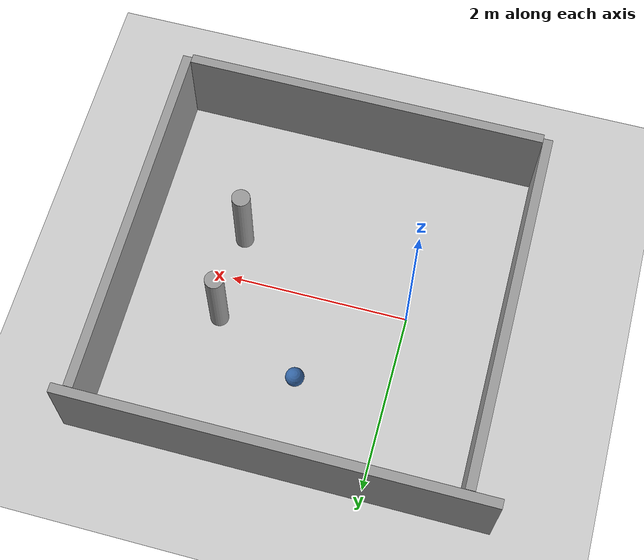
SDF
<sdf version="1.7">
 <world name="default">
  <light name="sun" type="directional">
   <pose>0 0 10 0 -0 0</pose>
   <diffuse>0.8 0.8 0.8 1</diffuse>
   <specular>0.2 0.2 0.2 1</specular>
   <attenuation>
    <range>1000</range>
    <constant>0.9</constant>
    <linear>0.01</linear>
    <quadratic>0.001</quadratic>
   </attenuation>
   <direction>-0.5 0.1 -0.9</direction>
   <spot><inner_angle>0</inner_angle><outer_angle>0</outer_angle><falloff>0</falloff></spot>
  </light>
  <model name="ground_plane">
   <static>1</static>
   <link name="link">
    <collision name="collision">
     <geometry><plane><normal>0 0 1</normal><size>100 100</size></plane></geometry>
     <surface>
      <contact><collide_bitmask>65535</collide_bitmask></contact>
      <friction><ode><mu>100</mu><mu2>50</mu2></ode></friction>
     </surface>
    </collision>
    <visual name="visual">
     <cast_shadows>0</cast_shadows>
     <geometry><plane><normal>0 0 1</normal><size>100 100</size></plane></geometry>
     <material>
      <script><uri>file://media/materials/scripts/gazebo.material</uri><name>Gazebo/Grey</name></script>
     </material>
    </visual>
   </link>
  </model>
  <physics type="ode">
   <real_time_update_rate>1000</real_time_update_rate>
   <max_step_size>0.001</max_step_size>
   <real_time_factor>1</real_time_factor>
   <ode>
    <solver>
     <type>quick</type>
     <iters>150</iters>
     <precon_iters>0</precon_iters>
     <sor>1.4</sor>
     <use_dynamic_moi_rescaling>1</use_dynamic_moi_rescaling>
    </solver>
    <constraints>
     <cfm>1e-05</cfm>
     <erp>0.2</erp>
     <contact_max_correcting_vel>2000</contact_max_correcting_vel>
     <contact_surface_layer>0.01</contact_surface_layer>
    </constraints>
   </ode>
  </physics>
  <scene><ambient>0.4 0.4 0.4 1</ambient><background>0.7 0.7 0.7 1</background><shadows>1</shadows></scene>
  <gravity>0 0 -9.8</gravity>
  <magnetic_field>6e-06 2.3e-05 -4.2e-05</magnetic_field>
  <atmosphere type="adiabatic"/>
  <spherical_coordinates>
   <surface_model>EARTH_WGS84</surface_model>
   <latitude_deg>0</latitude_deg>
   <longitude_deg>0</longitude_deg>
   <elevation>0</elevation>
   <heading_deg>0</heading_deg>
  </spherical_coordinates>
  <model name="wall_clone">
   <link name="link_0">
    <inertial>
     <mass>0.628692</mass>
     <inertia><ixx>0.0529627</ixx><ixy>0</ixy><ixz>0</ixz><iyy>1.96512</iyy><iyz>0</iyz><izz>1.9133</izz></inertia>
    </inertial>
    <visual name="visual">
     <geometry><box><size>4.02831 0.104457 1</size></box></geometry>
     <material>
      <lighting>1</lighting>
      <script><uri>file://media/materials/scripts/gazebo.material</uri><name>Gazebo/Grey</name></script>
      <shader type="pixel"/>
     </material>
    </visual>
    <collision name="collision">
     <geometry><box><size>4.02831 0.104457 1</size></box></geometry>
     <surface>
      <friction>
       <ode><mu>1</mu><mu2>1</mu2><fdir1>0 0 0</fdir1><slip1>0</slip1><slip2>0</slip2></ode>
       <torsional>
        <coefficient>1</coefficient>
        <patch_radius>0</patch_radius>
        <surface_radius>0</surface_radius>
        <use_patch_radius>1</use_patch_radius>
        <ode><slip>0</slip></ode>
       </torsional>
      </friction>
      <bounce><restitution_coefficient>0</restitution_coefficient><threshold>1e+06</threshold></bounce>
      <contact>
       <collide_without_contact>0</collide_without_contact>
       <collide_without_contact_bitmask>1</collide_without_contact_bitmask>
       <collide_bitmask>1</collide_bitmask>
       <ode>
        <soft_cfm>0</soft_cfm>
        <soft_erp>0.2</soft_erp>
        <kp>1e+13</kp>
        <kd>1</kd>
        <max_vel>0.01</max_vel>
        <min_depth>0</min_depth>
       </ode>
       <bullet>
        <split_impulse>1</split_impulse>
        <split_impulse_penetration_threshold>-0.01</split_impulse_penetration_threshold>
        <soft_cfm>0</soft_cfm>
        <soft_erp>0.2</soft_erp>
        <kp>1e+13</kp>
        <kd>1</kd>
       </bullet>
      </contact>
     </surface>
    </collision>
   </link>
   <static>0</static>
   <pose>1.01873 -2.06638 0.499998 0 -1e-06 -0.003066</pose>
  </model>
  <model name="wall_clone_0">
   <link name="link_0">
    <inertial>
     <mass>0.628692</mass>
     <inertia><ixx>0.0529627</ixx><ixy>0</ixy><ixz>0</ixz><iyy>1.96512</iyy><iyz>0</iyz><izz>1.9133</izz></inertia>
    </inertial>
    <visual name="visual">
     <geometry><box><size>4.09354 0.104457 1</size></box></geometry>
     <material>
      <lighting>1</lighting>
      <script><uri>file://media/materials/scripts/gazebo.material</uri><name>Gazebo/Grey</name></script>
      <shader type="pixel"/>
     </material>
    </visual>
    <collision name="collision">
     <geometry><box><size>4.09354 0.104457 1</size></box></geometry>
     <surface>
      <friction>
       <ode><mu>1</mu><mu2>1</mu2><fdir1>0 0 0</fdir1><slip1>0</slip1><slip2>0</slip2></ode>
       <torsional>
        <coefficient>1</coefficient>
        <patch_radius>0</patch_radius>
        <surface_radius>0</surface_radius>
        <use_patch_radius>1</use_patch_radius>
        <ode><slip>0</slip></ode>
       </torsional>
      </friction>
      <bounce><restitution_coefficient>0</restitution_coefficient><threshold>1e+06</threshold></bounce>
      <contact>
       <collide_without_contact>0</collide_without_contact>
       <collide_without_contact_bitmask>1</collide_without_contact_bitmask>
       <collide_bitmask>1</collide_bitmask>
       <ode>
        <soft_cfm>0</soft_cfm>
        <soft_erp>0.2</soft_erp>
        <kp>1e+13</kp>
        <kd>1</kd>
        <max_vel>0.01</max_vel>
        <min_depth>0</min_depth>
       </ode>
       <bullet>
        <split_impulse>1</split_impulse>
        <split_impulse_penetration_threshold>-0.01</split_impulse_penetration_threshold>
        <soft_cfm>0</soft_cfm>
        <soft_erp>0.2</soft_erp>
        <kp>1e+13</kp>
        <kd>1</kd>
       </bullet>
      </contact>
     </surface>
    </collision>
   </link>
   <static>0</static>
   <pose>3.08087 -0.036967 0.499999 0 1e-06 1.57307</pose>
  </model>
  <model name="wall_clone_0_clone">
   <link name="link_0">
    <inertial>
     <mass>0.628692</mass>
     <inertia><ixx>0.0529627</ixx><ixy>0</ixy><ixz>0</ixz><iyy>1.96512</iyy><iyz>0</iyz><izz>1.9133</izz></inertia>
    </inertial>
    <visual name="visual">
     <geometry><box><size>4.07307 0.104457 1</size></box></geometry>
     <material>
      <lighting>1</lighting>
      <script><uri>file://media/materials/scripts/gazebo.material</uri><name>Gazebo/Grey</name></script>
      <shader type="pixel"/>
     </material>
    </visual>
    <collision name="collision">
     <geometry><box><size>4.07307 0.104457 1</size></box></geometry>
     <surface>
      <friction>
       <ode><mu>1</mu><mu2>1</mu2><fdir1>0 0 0</fdir1><slip1>0</slip1><slip2>0</slip2></ode>
       <torsional>
        <coefficient>1</coefficient>
        <patch_radius>0</patch_radius>
        <surface_radius>0</surface_radius>
        <use_patch_radius>1</use_patch_radius>
        <ode><slip>0</slip></ode>
       </torsional>
      </friction>
      <bounce><restitution_coefficient>0</restitution_coefficient><threshold>1e+06</threshold></bounce>
      <contact>
       <collide_without_contact>0</collide_without_contact>
       <collide_without_contact_bitmask>1</collide_without_contact_bitmask>
       <collide_bitmask>1</collide_bitmask>
       <ode>
        <soft_cfm>0</soft_cfm>
        <soft_erp>0.2</soft_erp>
        <kp>1e+13</kp>
        <kd>1</kd>
        <max_vel>0.01</max_vel>
        <min_depth>0</min_depth>
       </ode>
       <bullet>
        <split_impulse>1</split_impulse>
        <split_impulse_penetration_threshold>-0.01</split_impulse_penetration_threshold>
        <soft_cfm>0</soft_cfm>
        <soft_erp>0.2</soft_erp>
        <kp>1e+13</kp>
        <kd>1</kd>
       </bullet>
      </contact>
     </surface>
    </collision>
   </link>
   <static>0</static>
   <pose>-1.04874 -0.027158 0.499999 0 -1e-06 1.57127</pose>
  </model>
  <model name="Post1">
   <link name="link_4">
    <inertial>
     <mass>1000.01</mass>
     <inertia><ixx>85.9409</ixx><ixy>0</ixy><ixz>0</ixz><iyy>85.9409</iyy><iyz>0</iyz><izz>5.21328</izz></inertia>
    </inertial>
    <visual name="visual">
     <geometry><cylinder><radius>0.10211</radius><length>1</length></cylinder></geometry>
     <material>
      <lighting>1</lighting>
      <script><uri>file://media/materials/scripts/gazebo.material</uri><name>Gazebo/Grey</name></script>
      <shader type="pixel"><normal_map>__default__</normal_map></shader>
      <ambient>1 1 1 1</ambient>
      <diffuse>0.933 0.933 0.925 1</diffuse>
      <specular>0.533 0.541 0.522 1</specular>
      <emissive>0.333 0.341 0.325 1</emissive>
     </material>
    </visual>
    <collision name="collision">
     <geometry><cylinder><radius>0.10211</radius><length>1</length></cylinder></geometry>
     <surface>
      <friction>
       <ode><mu>1</mu><mu2>1</mu2><fdir1>0 0 0</fdir1><slip1>0</slip1><slip2>0</slip2></ode>
       <torsional>
        <coefficient>1</coefficient>
        <patch_radius>0</patch_radius>
        <surface_radius>0</surface_radius>
        <use_patch_radius>1</use_patch_radius>
        <ode><slip>0</slip></ode>
       </torsional>
      </friction>
      <bounce><restitution_coefficient>0</restitution_coefficient><threshold>1e+06</threshold></bounce>
      <contact>
       <collide_without_contact>0</collide_without_contact>
       <collide_without_contact_bitmask>1</collide_without_contact_bitmask>
       <collide_bitmask>1</collide_bitmask>
       <ode>
        <soft_cfm>0</soft_cfm>
        <soft_erp>0.2</soft_erp>
        <kp>1e+13</kp>
        <kd>1</kd>
        <max_vel>0.01</max_vel>
        <min_depth>0</min_depth>
       </ode>
       <bullet>
        <split_impulse>1</split_impulse>
        <split_impulse_penetration_threshold>-0.01</split_impulse_penetration_threshold>
        <soft_cfm>0</soft_cfm>
        <soft_erp>0.2</soft_erp>
        <kp>1e+13</kp>
        <kd>1</kd>
       </bullet>
      </contact>
     </surface>
    </collision>
   </link>
   <static>0</static>
   <pose>2.00046 0.50011 0.49999 -1e-06 1e-06 0.222969</pose>
  </model>
  <model name="Post1_clone">
   <link name="link_4">
    <inertial>
     <mass>1000.01</mass>
     <inertia><ixx>85.9409</ixx><ixy>0</ixy><ixz>0</ixz><iyy>85.9409</iyy><iyz>0</iyz><izz>5.21328</izz></inertia>
    </inertial>
    <visual name="visual">
     <geometry><cylinder><radius>0.10211</radius><length>1</length></cylinder></geometry>
     <material>
      <lighting>1</lighting>
      <script><uri>file://media/materials/scripts/gazebo.material</uri><name>Gazebo/Grey</name></script>
      <shader type="pixel"><normal_map>__default__</normal_map></shader>
      <ambient>1 1 1 1</ambient>
      <diffuse>0.933 0.933 0.925 1</diffuse>
      <specular>0.533 0.541 0.522 1</specular>
      <emissive>0.333 0.341 0.325 1</emissive>
     </material>
    </visual>
    <collision name="collision">
     <geometry><cylinder><radius>0.10211</radius><length>1</length></cylinder></geometry>
     <surface>
      <friction>
       <ode><mu>1</mu><mu2>1</mu2><fdir1>0 0 0</fdir1><slip1>0</slip1><slip2>0</slip2></ode>
       <torsional>
        <coefficient>1</coefficient>
        <patch_radius>0</patch_radius>
        <surface_radius>0</surface_radius>
        <use_patch_radius>1</use_patch_radius>
        <ode><slip>0</slip></ode>
       </torsional>
      </friction>
      <bounce><restitution_coefficient>0</restitution_coefficient><threshold>1e+06</threshold></bounce>
      <contact>
       <collide_without_contact>0</collide_without_contact>
       <collide_without_contact_bitmask>1</collide_without_contact_bitmask>
       <collide_bitmask>1</collide_bitmask>
       <ode>
        <soft_cfm>0</soft_cfm>
        <soft_erp>0.2</soft_erp>
        <kp>1e+13</kp>
        <kd>1</kd>
        <max_vel>0.01</max_vel>
        <min_depth>0</min_depth>
       </ode>
       <bullet>
        <split_impulse>1</split_impulse>
        <split_impulse_penetration_threshold>-0.01</split_impulse_penetration_threshold>
        <soft_cfm>0</soft_cfm>
        <soft_erp>0.2</soft_erp>
        <kp>1e+13</kp>
        <kd>1</kd>
       </bullet>
      </contact>
     </surface>
    </collision>
   </link>
   <static>0</static>
   <pose>2 -0.5 0.5 -0 -0 -2e-05</pose>
  </model>
  <model name="wall_0">
   <link name="link_0">
    <inertial>
     <mass>500</mass>
     <inertia><ixx>42.1213</ixx><ixy>0</ixy><ixz>0</ixz><iyy>940.358</iyy><iyz>0</iyz><izz>899.146</izz></inertia>
    </inertial>
    <visual name="visual">
     <geometry><box><size>4.6442 0.104457 1</size></box></geometry>
     <material>
      <lighting>1</lighting>
      <script><uri>file://media/materials/scripts/gazebo.material</uri><name>Gazebo/Grey</name></script>
      <shader type="pixel"><normal_map>__default__</normal_map></shader>
     </material>
    </visual>
    <collision name="collision">
     <geometry><box><size>4.6442 0.104457 1</size></box></geometry>
     <surface>
      <friction>
       <ode><mu>1</mu><mu2>1</mu2><fdir1>0 0 0</fdir1><slip1>0</slip1><slip2>0</slip2></ode>
       <torsional>
        <coefficient>1</coefficient>
        <patch_radius>0</patch_radius>
        <surface_radius>0</surface_radius>
        <use_patch_radius>1</use_patch_radius>
        <ode><slip>0</slip></ode>
       </torsional>
      </friction>
      <bounce><restitution_coefficient>0</restitution_coefficient><threshold>1e+06</threshold></bounce>
      <contact>
       <collide_without_contact>0</collide_without_contact>
       <collide_without_contact_bitmask>1</collide_without_contact_bitmask>
       <collide_bitmask>1</collide_bitmask>
       <ode>
        <soft_cfm>0</soft_cfm>
        <soft_erp>0.2</soft_erp>
        <kp>1e+13</kp>
        <kd>1</kd>
        <max_vel>0.01</max_vel>
        <min_depth>0</min_depth>
       </ode>
       <bullet>
        <split_impulse>1</split_impulse>
        <split_impulse_penetration_threshold>-0.01</split_impulse_penetration_threshold>
        <soft_cfm>0</soft_cfm>
        <soft_erp>0.2</soft_erp>
        <kp>1e+13</kp>
        <kd>1</kd>
       </bullet>
      </contact>
     </surface>
    </collision>
   </link>
   <static>0</static>
   <pose>0.93537 2.06435 0.499993 0 3e-06 0</pose>
  </model>
  <model name="Ball_0">
   <link name="link_1">
    <inertial>
     <mass>0.0426598</mass>
     <inertia>
      <ixx>0.00018573</ixx>
      <ixy>0</ixy>
      <ixz>0</ixz>
      <iyy>0.00018573</iyy>
      <iyz>0</iyz>
      <izz>0.00018573</izz>
     </inertia>
    </inertial>
    <pose>0 0 0.10997 0 -0 0</pose>
    <visual name="visual">
     <geometry><sphere><radius>0.104328</radius></sphere></geometry>
     <material>
      <lighting>1</lighting>
      <script><uri>file://media/materials/scripts/gazebo.material</uri><name>Gazebo/Grey</name></script>
      <shader type="pixel"><normal_map>__default__</normal_map></shader>
      <ambient>0.204 0.396 0.643 1</ambient>
      <diffuse>0.204 0.396 0.643 1</diffuse>
      <specular>0.204 0.396 0.643 1</specular>
      <emissive>0.204 0.396 0.643 1</emissive>
     </material>
    </visual>
    <collision name="collision">
     <geometry><sphere><radius>0.104328</radius></sphere></geometry>
     <surface>
      <friction>
       <ode><mu>1</mu><mu2>1</mu2><fdir1>0 0 0</fdir1><slip1>0</slip1><slip2>0</slip2></ode>
       <torsional>
        <coefficient>1</coefficient>
        <patch_radius>0</patch_radius>
        <surface_radius>0</surface_radius>
        <use_patch_radius>1</use_patch_radius>
        <ode><slip>0</slip></ode>
       </torsional>
      </friction>
      <bounce><restitution_coefficient>0</restitution_coefficient><threshold>1e+06</threshold></bounce>
      <contact>
       <collide_without_contact>0</collide_without_contact>
       <collide_without_contact_bitmask>1</collide_without_contact_bitmask>
       <collide_bitmask>1</collide_bitmask>
       <ode>
        <soft_cfm>0</soft_cfm>
        <soft_erp>0.2</soft_erp>
        <kp>1e+13</kp>
        <kd>1</kd>
        <max_vel>0.01</max_vel>
        <min_depth>0</min_depth>
       </ode>
       <bullet>
        <split_impulse>1</split_impulse>
        <split_impulse_penetration_threshold>-0.01</split_impulse_penetration_threshold>
        <soft_cfm>0</soft_cfm>
        <soft_erp>0.2</soft_erp>
        <kp>1e+13</kp>
        <kd>1</kd>
       </bullet>
      </contact>
     </surface>
    </collision>
   </link>
   <static>0</static>
   <pose>1.00093 0.999977 -0.005642 0 -0 0</pose>
  </model>
 </world>
</sdf>
